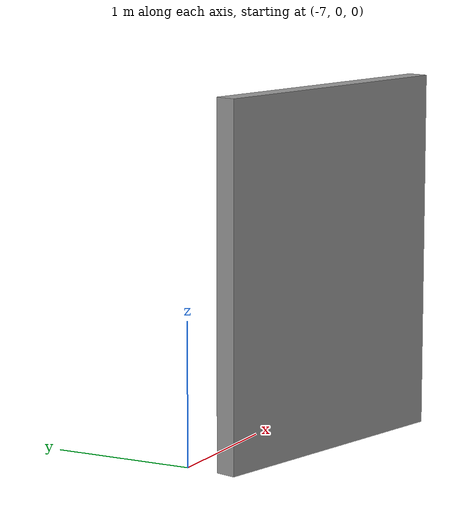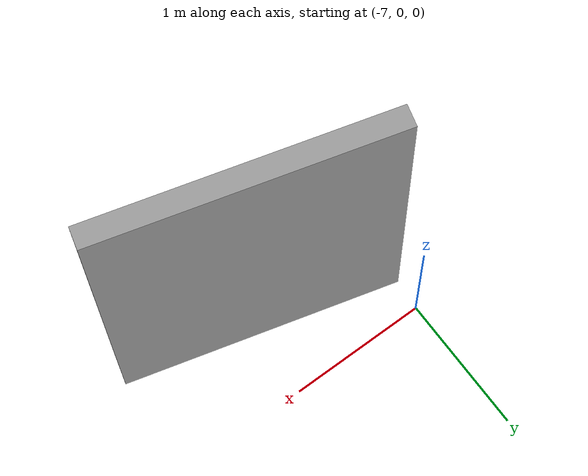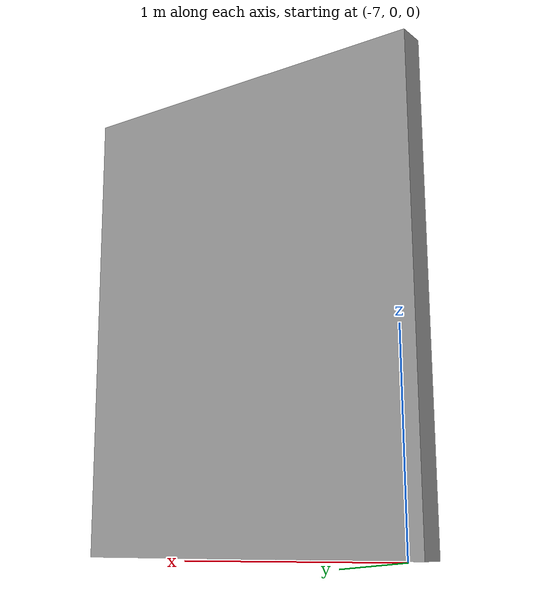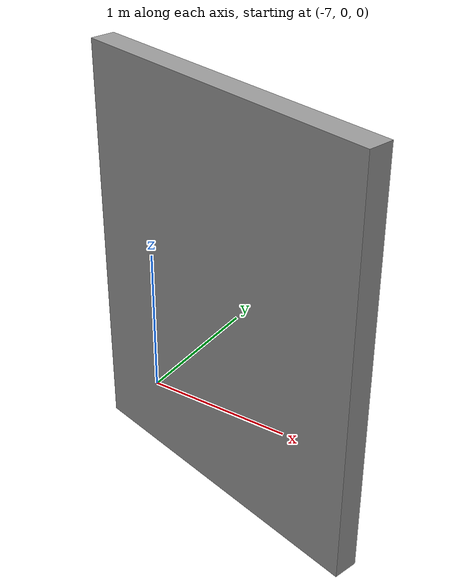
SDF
<?xml version='1.0'?>
<sdf version='1.6'>
  <model name='Untitled'>
    <pose frame=''>-6.07348 -0.560592 0 0 -0 0</pose>
    <link name='Wall_0'>
      <collision name='Wall_0_Collision'>
        <geometry>
          <box>
            <size>2 0.15 2.5</size>
          </box>
        </geometry>
        <pose frame=''>0 0 1.25 0 -0 0</pose>
      </collision>
      <visual name='Wall_0_Visual'>
        <pose frame=''>0 0 1.25 0 -0 0</pose>
        <geometry>
          <box>
            <size>2 0.15 2.5</size>
          </box>
        </geometry>
        <material>
          <script>
            <uri>file://media/materials/scripts/gazebo.material</uri>
            <name>Gazebo/Grey</name>
          </script>
          <ambient>1 1 1 1</ambient>
        </material>
        <meta>
          <layer>0</layer>
        </meta>
      </visual>
      <pose frame=''>0 0 0 0 -0 2.87979</pose>
    </link>
    <static>1</static>
  </model>
</sdf>
